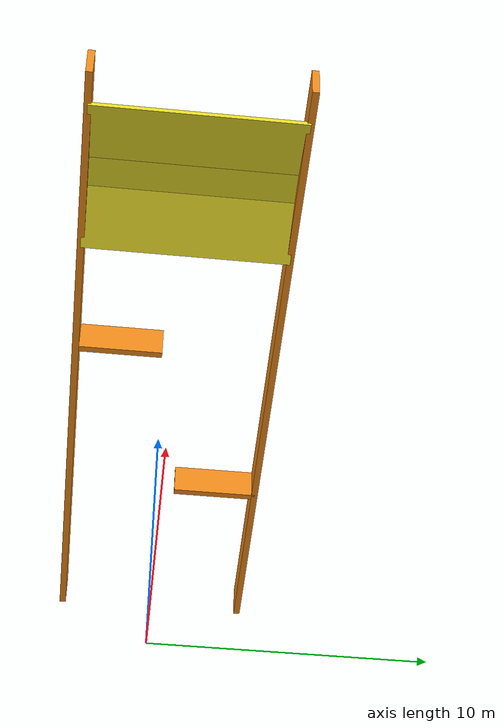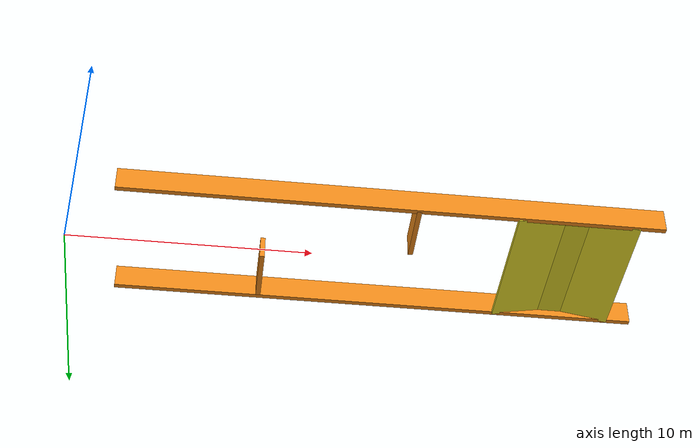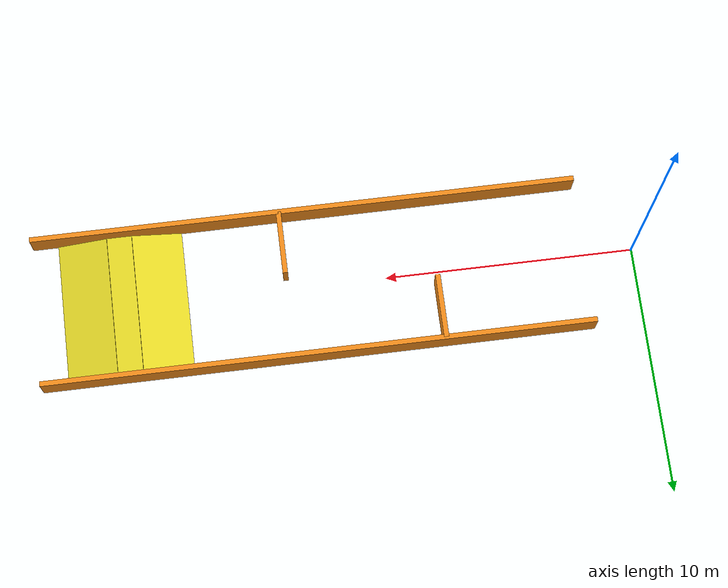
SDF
<?xml version="1.0" ?>
<sdf version="1.6">
  <model name="obstacle_course">
    <static>true</static>

    <link name="left_wall">
      <pose>13.000000 3.000000 0.500000 0 0 0</pose>
      <collision name="collision">
        <geometry>
          <box><size>22.000000 0.200000 1.000000</size></box>
        </geometry>
      </collision>
      <visual name="visual">
        <geometry>
          <box><size>22.000000 0.200000 1.000000</size></box>
        </geometry>
        <material>
          <script>
            <uri>file://media/materials/scripts/gazebo.material</uri>
            <name>Gazebo/Orange</name>
          </script>
        </material>
      </visual>
    </link>

    <link name="right_wall">
      <pose>13.000000 -3.000000 0.500000 0 0 0</pose>
      <collision name="collision">
        <geometry>
          <box><size>22.000000 0.200000 1.000000</size></box>
        </geometry>
      </collision>
      <visual name="visual">
        <geometry>
          <box><size>22.000000 0.200000 1.000000</size></box>
        </geometry>
        <material>
          <script>
            <uri>file://media/materials/scripts/gazebo.material</uri>
            <name>Gazebo/Orange</name>
          </script>
        </material>
      </visual>
    </link>

    <link name="baffle_a">
      <pose>8.000000 1.700000 0.500000 0 0 0</pose>
      <collision name="collision">
        <geometry>
          <box><size>0.200000 2.600000 1.000000</size></box>
        </geometry>
      </collision>
      <visual name="visual">
        <geometry>
          <box><size>0.200000 2.600000 1.000000</size></box>
        </geometry>
        <material>
          <script>
            <uri>file://media/materials/scripts/gazebo.material</uri>
            <name>Gazebo/Orange</name>
          </script>
        </material>
      </visual>
    </link>

    <link name="baffle_b">
      <pose>14.000000 -1.700000 0.500000 0 0 0</pose>
      <collision name="collision">
        <geometry>
          <box><size>0.200000 2.600000 1.000000</size></box>
        </geometry>
      </collision>
      <visual name="visual">
        <geometry>
          <box><size>0.200000 2.600000 1.000000</size></box>
        </geometry>
        <material>
          <script>
            <uri>file://media/materials/scripts/gazebo.material</uri>
            <name>Gazebo/Orange</name>
          </script>
        </material>
      </visual>
    </link>

    <link name="ramp_up">
      <pose>18.995522 0 0.175000 0 -0.174009 0</pose>
      <collision name="collision">
        <geometry>
          <box><size>2.021573 6.000000 0.12</size></box>
        </geometry>
      </collision>
      <visual name="visual">
        <geometry>
          <box><size>2.021573 6.000000 0.12</size></box>
        </geometry>
        <material>
          <script>
            <uri>file://media/materials/scripts/gazebo.material</uri>
            <name>Gazebo/Yellow</name>
          </script>
        </material>
      </visual>
    </link>

    <link name="ramp_plateau">
      <pose>20.491044 0 0.350000 0 0 0</pose>
      <collision name="collision">
        <geometry>
          <box><size>1.000000 6.000000 0.12</size></box>
        </geometry>
      </collision>
      <visual name="visual">
        <geometry>
          <box><size>1.000000 6.000000 0.12</size></box>
        </geometry>
        <material>
          <script>
            <uri>file://media/materials/scripts/gazebo.material</uri>
            <name>Gazebo/Yellow</name>
          </script>
        </material>
      </visual>
    </link>

    <link name="ramp_down">
      <pose>21.986566 0 0.175000 0 0.174009 0</pose>
      <collision name="collision">
        <geometry>
          <box><size>2.021573 6.000000 0.12</size></box>
        </geometry>
      </collision>
      <visual name="visual">
        <geometry>
          <box><size>2.021573 6.000000 0.12</size></box>
        </geometry>
        <material>
          <script>
            <uri>file://media/materials/scripts/gazebo.material</uri>
            <name>Gazebo/Yellow</name>
          </script>
        </material>
      </visual>
    </link>

  </model>
</sdf>
